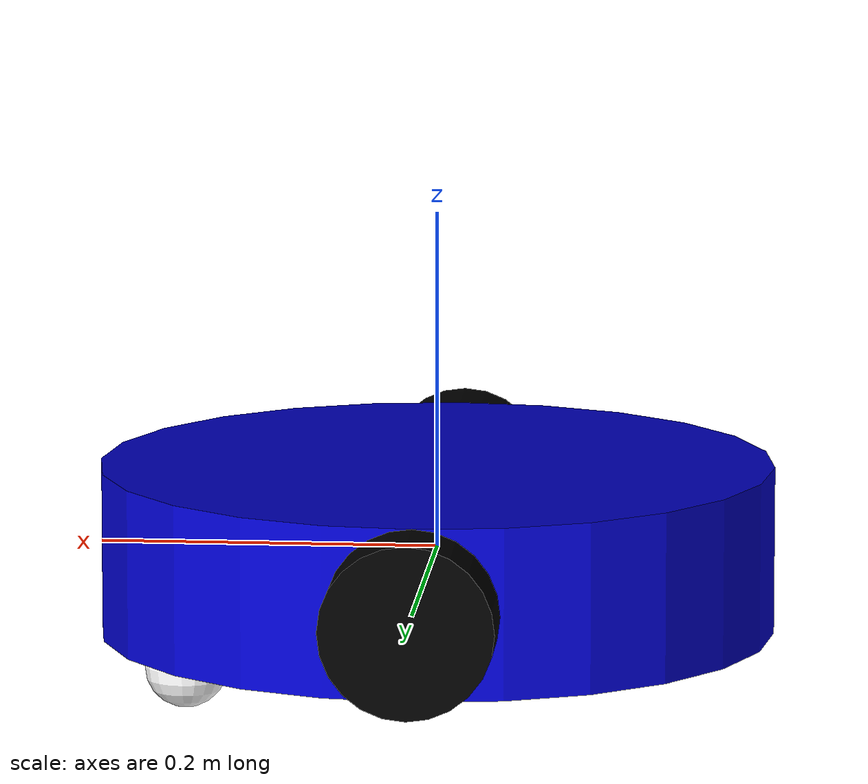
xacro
<?xml version="1.0"?>
<robot xmlns:xacro="http://www.ros.org/wiki/xacro">

  <!-- Define robot_name argument -->
  <xacro:arg name="robot_name" default="robot"/>
  <xacro:property name="robot_name" value="$(arg robot_name)"/>

  <!-- Define the robot macro -->
  <xacro:macro name="diff_drive_robot" params="robot_name">

    <!-- Base Link -->
    <link name="${robot_name}/base_link">
      <visual>
        <geometry>
          <cylinder length="0.1" radius="0.2"/>
        </geometry>
        <material name="blue">
          <color rgba="0 0 0.8 1"/>
        </material>
      </visual>
      <collision>
        <geometry>
          <cylinder length="0.1" radius="0.2"/>
        </geometry>
      </collision>
      <inertial>
        <mass value="5.0"/>
        <inertia ixx="0.1" ixy="0.0" ixz="0.0" iyy="0.1" iyz="0.0" izz="0.1"/>
      </inertial>
    </link>

    <!-- Left Wheel -->
    <link name="${robot_name}/left_wheel">
      <visual>
        <geometry>
          <cylinder length="0.05" radius="0.05"/>
        </geometry>
        <material name="black">
          <color rgba="0 0 0 1"/>
        </material>
        <origin xyz="0 0 0" rpy="1.5707 0 0"/>
      </visual>
      <collision>
        <geometry>
          <cylinder length="0.05" radius="0.05"/>
        </geometry>
        <origin xyz="0 0 0" rpy="1.5707 0 0"/>
      </collision>
      <inertial>
        <mass value="0.5"/>
        <inertia ixx="0.001" ixy="0.0" ixz="0.0" iyy="0.001" iyz="0.0" izz="0.001"/>
      </inertial>
    </link>

    <joint name="${robot_name}/left_wheel_joint" type="continuous">
      <parent link="${robot_name}/base_link"/>
      <child link="${robot_name}/left_wheel"/>
      <origin xyz="0 0.225 0" rpy="0 0 0"/>
      <axis xyz="0 1 0"/>
    </joint>

    <!-- Right Wheel -->
    <link name="${robot_name}/right_wheel">
      <visual>
        <geometry>
          <cylinder length="0.05" radius="0.05"/>
        </geometry>
        <material name="black">
          <color rgba="0 0 0 1"/>
        </material>
        <origin xyz="0 0 0" rpy="1.5707 0 0"/>
      </visual>
      <collision>
        <geometry>
          <cylinder length="0.05" radius="0.05"/>
        </geometry>
        <origin xyz="0 0 0" rpy="1.5707 0 0"/>
      </collision>
      <inertial>
        <mass value="0.5"/>
        <inertia ixx="0.001" ixy="0.0" ixz="0.0" iyy="0.001" iyz="0.0" izz="0.001"/>
      </inertial>
    </link>

    <joint name="${robot_name}/right_wheel_joint" type="continuous">
      <parent link="${robot_name}/base_link"/>
      <child link="${robot_name}/right_wheel"/>
      <origin xyz="0 -0.225 0" rpy="0 0 0"/>
      <axis xyz="0 1 0"/>
    </joint>

    <!-- Caster Wheel for stability -->
    <link name="${robot_name}/caster_wheel">
      <visual>
        <geometry>
          <sphere radius="0.025"/>
        </geometry>
        <material name="white">
          <color rgba="1 1 1 1"/>
        </material>
      </visual>
      <collision>
        <geometry>
          <sphere radius="0.025"/>
        </geometry>
      </collision>
      <inertial>
        <mass value="0.1"/>
        <inertia ixx="0.0001" ixy="0.0" ixz="0.0" iyy="0.0001" iyz="0.0" izz="0.0001"/>
      </inertial>
    </link>

    <joint name="${robot_name}/caster_wheel_joint" type="fixed">
      <parent link="${robot_name}/base_link"/>
      <child link="${robot_name}/caster_wheel"/>
      <origin xyz="0.15 0 -0.075" rpy="0 0 0"/>
    </joint>

    <!-- Gazebo plugins -->
    <gazebo>
      <plugin name="diff_drive_controller" filename="libgazebo_ros_diff_drive.so">
        <robotNamespace>/${robot_name}</robotNamespace>
        <alwaysOn>true</alwaysOn>
        <updateRate>10.0</updateRate>
        <leftJoint>${robot_name}/left_wheel_joint</leftJoint>
        <rightJoint>${robot_name}/right_wheel_joint</rightJoint>
        <wheelSeparation>0.45</wheelSeparation>
        <wheelDiameter>0.1</wheelDiameter>
        <wheelTorque>10</wheelTorque>
        <wheelAcceleration>1.0</wheelAcceleration>
        <commandTopic>cmd_vel</commandTopic>
        <odometryTopic>odom</odometryTopic>
        <odometryFrame>odom</odometryFrame>
        <robotBaseFrame>${robot_name}/base_link</robotBaseFrame>
        <publishWheelTF>false</publishWheelTF>
        <publishOdomTF>true</publishOdomTF>
        <publishWheelJointState>false</publishWheelJointState>
        <legacyMode>false</legacyMode>
      </plugin>
    </gazebo>

    <!-- Gazebo materials -->
    <gazebo reference="${robot_name}/base_link">
      <material>Gazebo/Blue</material>
    </gazebo>

    <gazebo reference="${robot_name}/left_wheel">
      <material>Gazebo/Black</material>
      <mu1>1.0</mu1>
      <mu2>1.0</mu2>
    </gazebo>

    <gazebo reference="${robot_name}/right_wheel">
      <material>Gazebo/Black</material>
      <mu1>1.0</mu1>
      <mu2>1.0</mu2>
    </gazebo>

    <gazebo reference="${robot_name}/caster_wheel">
      <material>Gazebo/White</material>
      <mu1>0.0</mu1>
      <mu2>0.0</mu2>
    </gazebo>

  </xacro:macro>

  <!-- Instantiate the robot macro -->
  <xacro:diff_drive_robot robot_name="${robot_name}"/>

</robot>
